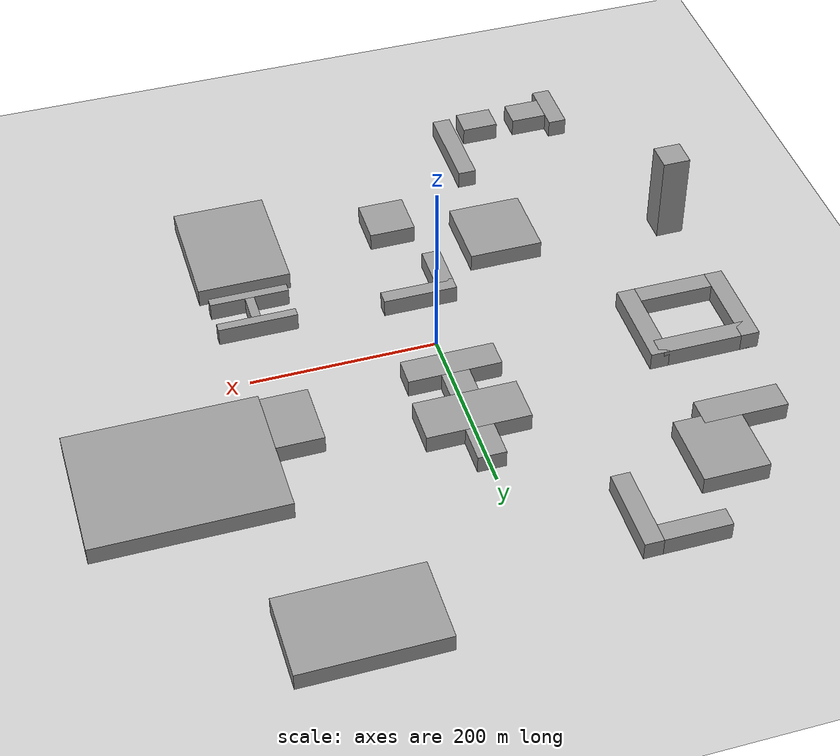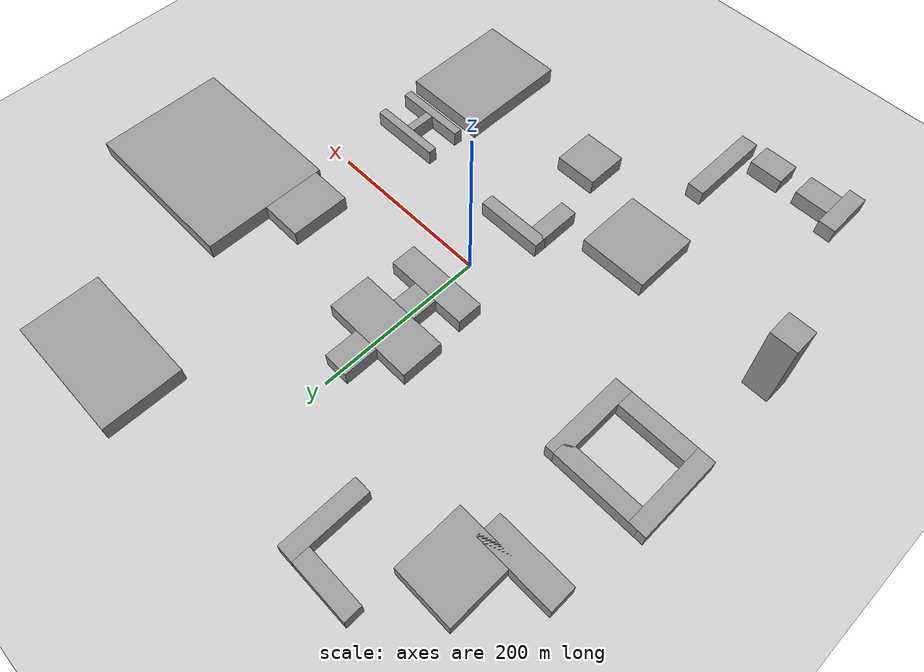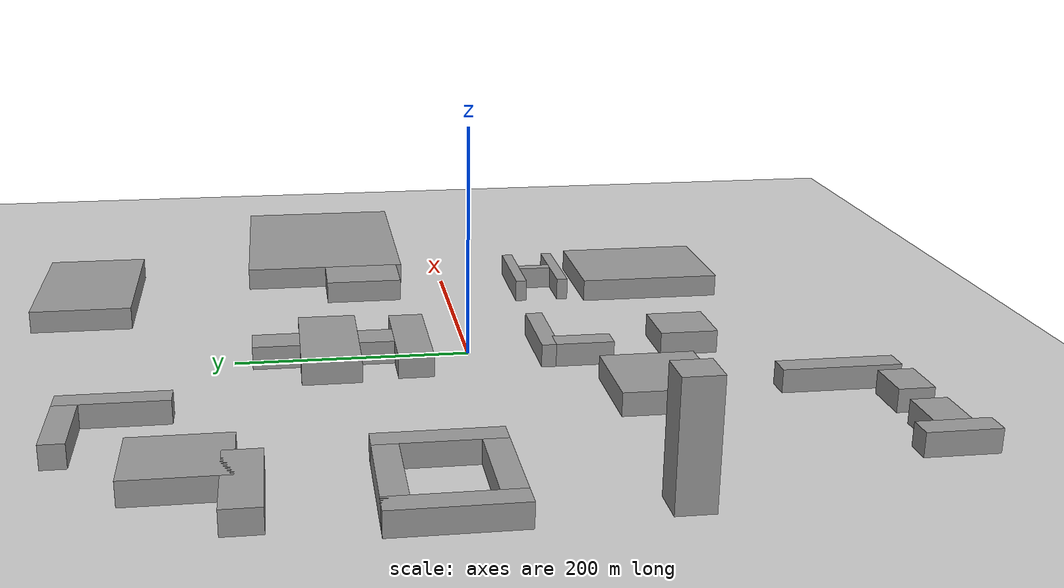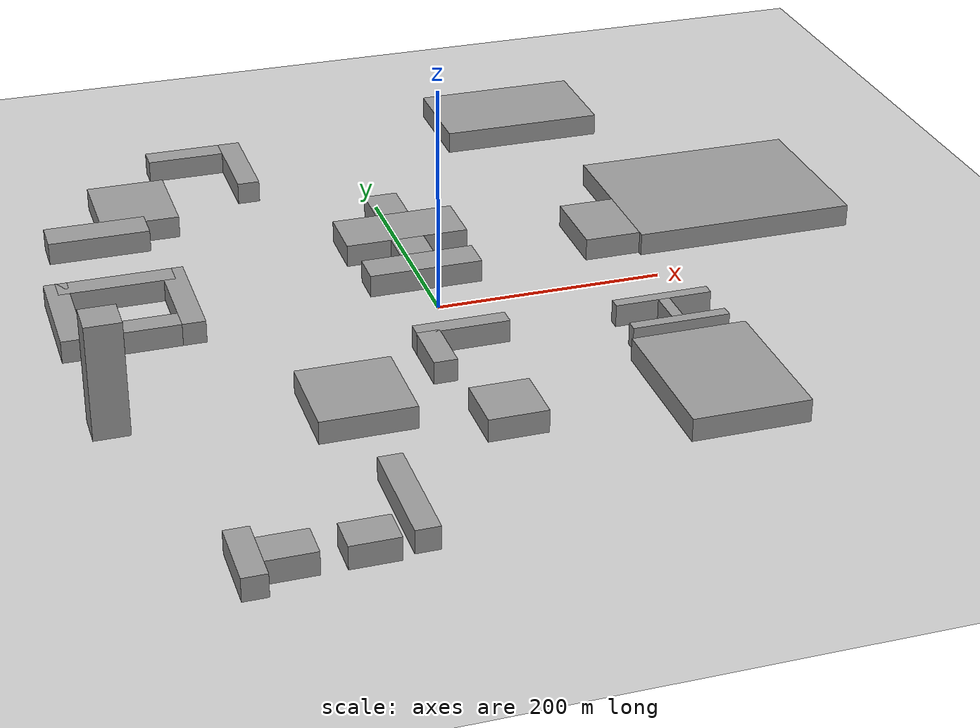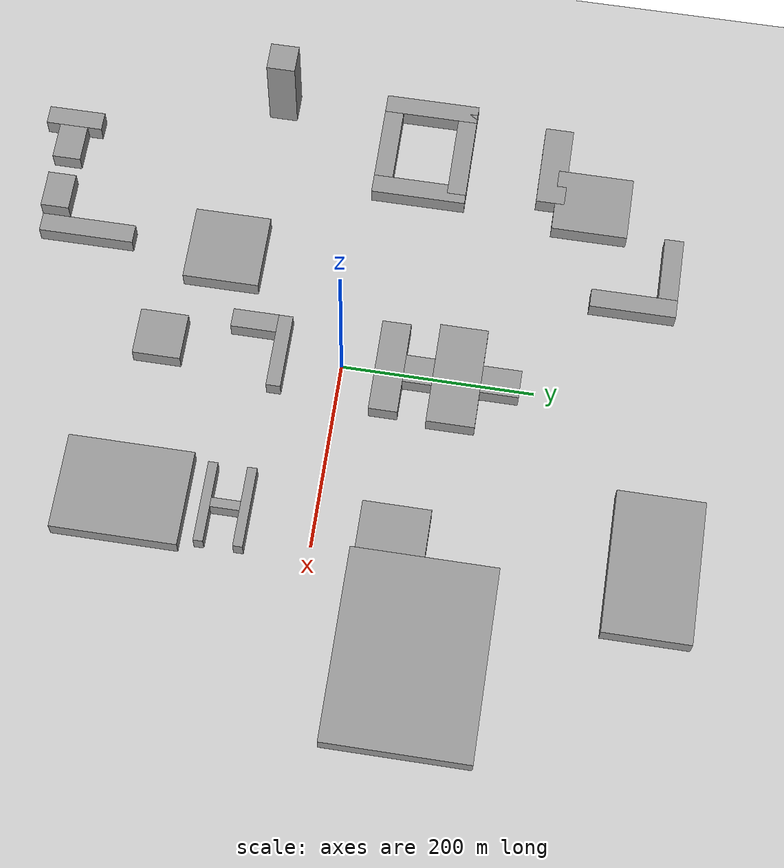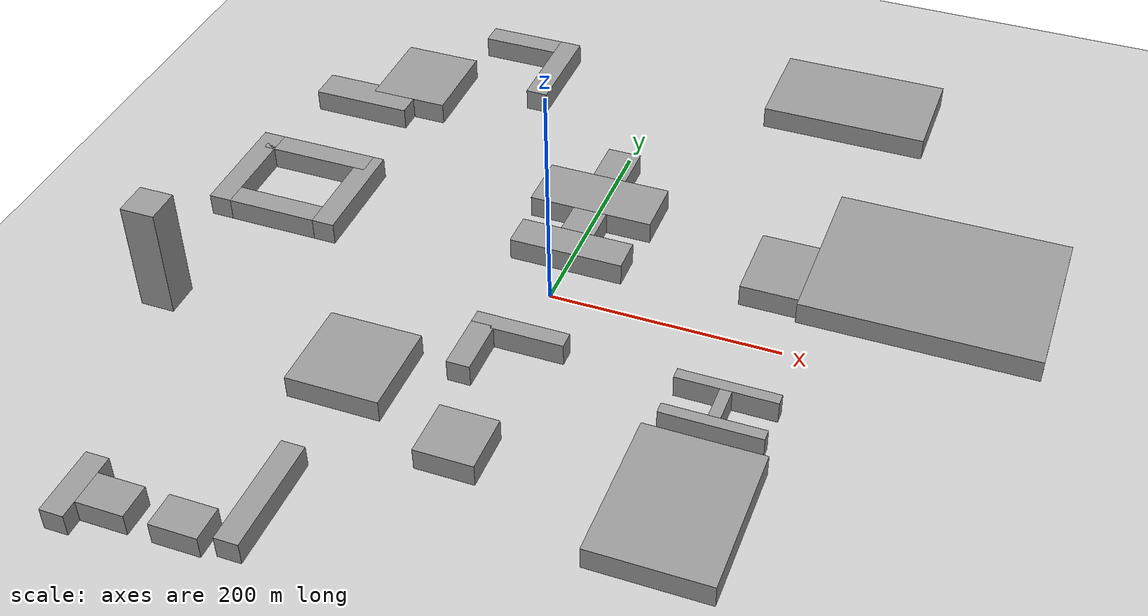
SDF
<sdf version='1.4'>
  <world name='default'>

    <light name='sun' type='directional'>
      <cast_shadows>1</cast_shadows>
      <pose>0 0 500 0 -0 0</pose>
      <diffuse>0.8 0.8 0.8 1</diffuse>
      <specular>0.2 0.2 0.2 1</specular>
      <attenuation>
        <range>1000</range>
        <constant>0.9</constant>
        <linear>0.01</linear>
        <quadratic>0.001</quadratic>
      </attenuation>
      <direction>-0.5 0.1 -0.9</direction>
    </light>

    <model name='ground_plane'>
      <static>1</static>
      <link name='link'>
        <collision name='collision'>
          <geometry>
            <plane>
              <normal>0 0 1</normal>
              <size>10000 10000</size>
            </plane>
          </geometry>
          <surface>
            <friction>
              <ode>
                <mu>100</mu>
                <mu2>50</mu2>
              </ode>
            </friction>
            <bounce/>
            <contact>
              <ode/>
            </contact>
          </surface>
          <max_contacts>10</max_contacts>
        </collision>
        <visual name='visual'>
          <cast_shadows>0</cast_shadows>
          <geometry>
            <plane>
              <normal>0 0 1</normal>
              <size>10000 10000</size>
            </plane>
          </geometry>
          <material>
            <script>
              <uri>file://media/materials/scripts/gazebo.material</uri>
              <name>Gazebo/Grey</name>
            </script>
          </material>
        </visual>
        <velocity_decay>
          <linear>0</linear>
          <angular>0</angular>
        </velocity_decay>
        <self_collide>0</self_collide>
        <kinematic>0</kinematic>
        <gravity>1</gravity>
      </link>
    </model>

    <physics type='ode'>
      <max_step_size>0.001</max_step_size>
      <real_time_factor>1</real_time_factor>
      <real_time_update_rate>1000</real_time_update_rate>
      <gravity>0 0 -9.8</gravity>
    </physics>
    <scene>
      <ambient>0.4 0.4 0.4 1</ambient>
      <background>0.7 0.7 0.7 1</background>
      <shadows>1</shadows>
    </scene>
    <spherical_coordinates>
      <surface_model>EARTH_WGS84</surface_model>
      <latitude_deg>0</latitude_deg>
      <longitude_deg>0</longitude_deg>
      <elevation>0</elevation>
      <heading_deg>0</heading_deg>
    </spherical_coordinates>

    <model name='library_1'>
      <pose>0 50 10 0 -0 0</pose> <!--position (x y z roll pitch yaw)-->
      <link name='link'>
        <inertial>
          <mass>1000</mass>
          <inertia>
            <ixx>1000</ixx>
            <ixy>0</ixy>
            <ixz>0</ixz>
            <iyy>1000</iyy>
            <iyz>0</iyz>
            <izz>1000</izz>
          </inertia>
        </inertial>
        <collision name='collision'>
          <geometry>
            <box>
              <size>100 30 20</size><!--size of the object that you can see(width x, length y, height z)-->
            </box>
          </geometry>
          <max_contacts>10</max_contacts>
          <surface>
            <bounce/>
            <friction>
              <ode/>
            </friction>
            <contact>
              <ode/>
            </contact>
          </surface>
        </collision>
        <visual name='visual'>
          <geometry>
            <box>
              <size>100 30 20</size><!--size of the object that you can see(width x, length y, height z)-->
            </box>
          </geometry>
          <material>
            <script>
              <uri>file://media/materials/scripts/gazebo.material</uri>
              <name>Gazebo/Grey</name>
            </script>
          </material>
        </visual>
        <velocity_decay>
          <linear>0</linear>
          <angular>0</angular>
        </velocity_decay>
        <self_collide>0</self_collide>
        <kinematic>0</kinematic>
        <gravity>1</gravity>
      </link>
      <static>1</static>  <!-- make sure static has value of 1 so as not to move when pushed-->
    </model>

  <model name='library_2'>
      <pose>0 80 10 0 -0 0</pose> <!--position (x y z roll pitch yaw) of geometric center-->
      <link name='link'>
        <inertial>
          <mass>1000</mass>
          <inertia>
            <ixx>1000</ixx>
            <ixy>0</ixy>
            <ixz>0</ixz>
            <iyy>1000</iyy>
            <iyz>0</iyz>
            <izz>1000</izz>
          </inertia>
        </inertial>
        <collision name='collision'>
          <geometry>
            <box>
              <size>30 30 20</size><!--size of the object that you can see(width x, length y, height z)-->
            </box>
          </geometry>
          <max_contacts>10</max_contacts>
          <surface>
            <bounce/>
            <friction>
              <ode/>
            </friction>
            <contact>
              <ode/>
            </contact>
          </surface>
        </collision>
        <visual name='visual'>
          <geometry>
            <box>
              <size>30 30 20</size><!--size of the object that you can see(width x, length y, height z)-->
            </box>
          </geometry>
          <material>
            <script>
              <uri>file://media/materials/scripts/gazebo.material</uri>
              <name>Gazebo/Grey</name>
            </script>
          </material>
        </visual>
        <velocity_decay>
          <linear>0</linear>
          <angular>0</angular>
        </velocity_decay>
        <self_collide>0</self_collide>
        <kinematic>0</kinematic>
        <gravity>1</gravity>
      </link>
      <static>1</static>  <!-- make sure static has value of 1 so as not to move when pushed-->
    </model>

 <model name='library_3'>
      <pose>0 120 10 0 -0 0</pose> <!--position (x y z roll pitch yaw) of geometric center-->
      <link name='link'>
        <inertial>
          <mass>1000</mass>
          <inertia>
            <ixx>1000</ixx>
            <ixy>0</ixy>
            <ixz>0</ixz>
            <iyy>1000</iyy>
            <iyz>0</iyz>
            <izz>1000</izz>
          </inertia>
        </inertial>
        <collision name='collision'>
          <geometry>
            <box>
              <size>110 50 20</size><!--size of the object that you can see(width x, length y, height z)-->
            </box>
          </geometry>
          <max_contacts>10</max_contacts>
          <surface>
            <bounce/>
            <friction>
              <ode/>
            </friction>
            <contact>
              <ode/>
            </contact>
          </surface>
        </collision>
        <visual name='visual'>
          <geometry>
            <box>
              <size>110 50 20</size><!--size of the object that you can see(width x, length y, height z)-->
            </box>
          </geometry>
          <material>
            <script>
              <uri>file://media/materials/scripts/gazebo.material</uri>
              <name>Gazebo/Grey</name>
            </script>
          </material>
        </visual>
        <velocity_decay>
          <linear>0</linear>
          <angular>0</angular>
        </velocity_decay>
        <self_collide>0</self_collide>
        <kinematic>0</kinematic>
        <gravity>1</gravity>
      </link>
      <static>1</static>  <!-- make sure static has value of 1 so as not to move when pushed-->
    </model>

 <model name='library_4'>
      <pose>0 165 10 0 -0 0</pose> <!--position (x y z roll pitch yaw) of geometric center-->
      <link name='link'>
        <inertial>
          <mass>1000</mass>
          <inertia>
            <ixx>1000</ixx>
            <ixy>0</ixy>
            <ixz>0</ixz>
            <iyy>1000</iyy>
            <iyz>0</iyz>
            <izz>1000</izz>
          </inertia>
        </inertial>
        <collision name='collision'>
          <geometry>
            <box>
              <size>30 40 20</size><!--size of the object that you can see(width x, length y, height z)-->
            </box>
          </geometry>
          <max_contacts>10</max_contacts>
          <surface>
            <bounce/>
            <friction>
              <ode/>
            </friction>
            <contact>
              <ode/>
            </contact>
          </surface>
        </collision>
        <visual name='visual'>
          <geometry>
            <box>
              <size>30 40 20</size><!--size of the object that you can see(width x, length y, height z)-->
            </box>
          </geometry>
          <material>
            <script>
              <uri>file://media/materials/scripts/gazebo.material</uri>
              <name>Gazebo/Grey</name>
            </script>
          </material>
        </visual>
        <velocity_decay>
          <linear>0</linear>
          <angular>0</angular>
        </velocity_decay>
        <self_collide>0</self_collide>
        <kinematic>0</kinematic>
        <gravity>1</gravity>
      </link>
      <static>1</static>  <!-- make sure static has value of 1 so as not to move when pushed-->
    </model>

 <model name='kennedy_2'>
      <pose>0 -65 10 0 -0 0</pose> <!--position (x y z roll pitch yaw) of geometric center-->
      <link name='link'>
        <inertial>
          <mass>1000</mass>
          <inertia>
            <ixx>1000</ixx>
            <ixy>0</ixy>
            <ixz>0</ixz>
            <iyy>1000</iyy>
            <iyz>0</iyz>
            <izz>1000</izz>
          </inertia>
        </inertial>
        <collision name='collision'>
          <geometry>
            <box>
              <size>80 15 20</size><!--size of the object that you can see(width x, length y, height z)-->
            </box>
          </geometry>
          <max_contacts>10</max_contacts>
          <surface>
            <bounce/>
            <friction>
              <ode/>
            </friction>
            <contact>
              <ode/>
            </contact>
          </surface>
        </collision>
        <visual name='visual'>
          <geometry>
            <box>
              <size>80 15 20</size><!--size of the object that you can see(width x, length y, height z)-->
            </box>
          </geometry>
          <material>
            <script>
              <uri>file://media/materials/scripts/gazebo.material</uri>
              <name>Gazebo/Grey</name>
            </script>
          </material>
        </visual>
        <velocity_decay>
          <linear>0</linear>
          <angular>0</angular>
        </velocity_decay>
        <self_collide>0</self_collide>
        <kinematic>0</kinematic>
        <gravity>1</gravity>
      </link>
      <static>1</static>  <!-- make sure static has value of 1 so as not to move when pushed-->
    </model>

 <model name='kennedy_1'>
      <pose>-30 -95 10 0 -0 0</pose> <!--position (x y z roll pitch yaw) of geometric center-->
      <link name='link'>
        <inertial>
          <mass>1000</mass>
          <inertia>
            <ixx>1000</ixx>
            <ixy>0</ixy>
            <ixz>0</ixz>
            <iyy>1000</iyy>
            <iyz>0</iyz>
            <izz>1000</izz>
          </inertia>
        </inertial>
        <collision name='collision'>
          <geometry>
            <box>
              <size>20 50 20</size><!--size of the object that you can see(width x, length y, height z)-->
            </box>
          </geometry>
          <max_contacts>10</max_contacts>
          <surface>
            <bounce/>
            <friction>
              <ode/>
            </friction>
            <contact>
              <ode/>
            </contact>
          </surface>
        </collision>
        <visual name='visual'>
          <geometry>
            <box>
              <size>20 50 20</size><!--size of the object that you can see(width x, length y, height z)-->
            </box>
          </geometry>
          <material>
            <script>
              <uri>file://media/materials/scripts/gazebo.material</uri>
              <name>Gazebo/Grey</name>
            </script>
          </material>
        </visual>
        <velocity_decay>
          <linear>0</linear>
          <angular>0</angular>
        </velocity_decay>
        <self_collide>0</self_collide>
        <kinematic>0</kinematic>
        <gravity>1</gravity>
      </link>
      <static>1</static>  <!-- make sure static has value of 1 so as not to move when pushed-->
    </model>

 <model name='marb'>
      <pose>-0 -190 10 0 -0 0</pose> <!--position (x y z roll pitch yaw) of geometric center-->
      <link name='link'>
        <inertial>
          <mass>1000</mass>
          <inertia>
            <ixx>1000</ixx>
            <ixy>0</ixy>
            <ixz>0</ixz>
            <iyy>1000</iyy>
            <iyz>0</iyz>
            <izz>1000</izz>
          </inertia>
        </inertial>
        <collision name='collision'>
          <geometry>
            <box>
              <size>50 50 20</size><!--size of the object that you can see(width x, length y, height z)-->
            </box>
          </geometry>
          <max_contacts>10</max_contacts>
          <surface>
            <bounce/>
            <friction>
              <ode/>
            </friction>
            <contact>
              <ode/>
            </contact>
          </surface>
        </collision>
        <visual name='visual'>
          <geometry>
            <box>
              <size>50 50 20</size><!--size of the object that you can see(width x, length y, height z)-->
            </box>
          </geometry>
          <material>
            <script>
              <uri>file://media/materials/scripts/gazebo.material</uri>
              <name>Gazebo/Grey</name>
            </script>
          </material>
        </visual>
        <velocity_decay>
          <linear>0</linear>
          <angular>0</angular>
        </velocity_decay>
        <self_collide>0</self_collide>
        <kinematic>0</kinematic>
        <gravity>1</gravity>
      </link>
      <static>1</static>  <!-- make sure static has value of 1 so as not to move when pushed-->
    </model>

 <model name='clyde'>
      <pose>175 -195 10 0 -0 0</pose> <!--position (x y z roll pitch yaw) of geometric center-->
      <link name='link'>
        <inertial>
          <mass>1000</mass>
          <inertia>
            <ixx>1000</ixx>
            <ixy>0</ixy>
            <ixz>0</ixz>
            <iyy>1000</iyy>
            <iyz>0</iyz>
            <izz>1000</izz>
          </inertia>
        </inertial>
        <collision name='collision'>
          <geometry>
            <box>
              <size>100 130 20</size><!--size of the object that you can see(width x, length y, height z)-->
            </box>
          </geometry>
          <max_contacts>10</max_contacts>
          <surface>
            <bounce/>
            <friction>
              <ode/>
            </friction>
            <contact>
              <ode/>
            </contact>
          </surface>
        </collision>
        <visual name='visual'>
          <geometry>
            <box>
              <size>100 130 20</size><!--size of the object that you can see(width x, length y, height z)-->
            </box>
          </geometry>
          <material>
            <script>
              <uri>file://media/materials/scripts/gazebo.material</uri>
              <name>Gazebo/Grey</name>
            </script>
          </material>
        </visual>
        <velocity_decay>
          <linear>0</linear>
          <angular>0</angular>
        </velocity_decay>
        <self_collide>0</self_collide>
        <kinematic>0</kinematic>
        <gravity>1</gravity>
      </link>
      <static>1</static>  <!-- make sure static has value of 1 so as not to move when pushed-->
    </model>

<model name='fletcher_1'>
      <pose>175 -110 10 0 -0 0</pose> <!--position (x y z roll pitch yaw) of geometric center-->
      <link name='link'>
        <inertial>
          <mass>1000</mass>
          <inertia>
            <ixx>1000</ixx>
            <ixy>0</ixy>
            <ixz>0</ixz>
            <iyy>1000</iyy>
            <iyz>0</iyz>
            <izz>1000</izz>
          </inertia>
        </inertial>
        <collision name='collision'>
          <geometry>
            <box>
              <size>85 10 20</size><!--size of the object that you can see(width x, length y, height z)-->
            </box>
          </geometry>
          <max_contacts>10</max_contacts>
          <surface>
            <bounce/>
            <friction>
              <ode/>
            </friction>
            <contact>
              <ode/>
            </contact>
          </surface>
        </collision>
        <visual name='visual'>
          <geometry>
            <box>
              <size>85 10 20</size><!--size of the object that you can see(width x, length y, height z)-->
            </box>
          </geometry>
          <material>
            <script>
              <uri>file://media/materials/scripts/gazebo.material</uri>
              <name>Gazebo/Grey</name>
            </script>
          </material>
        </visual>
        <velocity_decay>
          <linear>0</linear>
          <angular>0</angular>
        </velocity_decay>
        <self_collide>0</self_collide>
        <kinematic>0</kinematic>
        <gravity>1</gravity>
      </link>
      <static>1</static>  <!-- make sure static has value of 1 so as not to move when pushed-->
    </model>

<model name='fletcher_2'>
      <pose>175 -90 10 0 -0 0</pose> <!--position (x y z roll pitch yaw) of geometric center-->
      <link name='link'>
        <inertial>
          <mass>1000</mass>
          <inertia>
            <ixx>1000</ixx>
            <ixy>0</ixy>
            <ixz>0</ixz>
            <iyy>1000</iyy>
            <iyz>0</iyz>
            <izz>1000</izz>
          </inertia>
        </inertial>
        <collision name='collision'>
          <geometry>
            <box>
              <size>10 30 20</size><!--size of the object that you can see(width x, length y, height z)-->
            </box>
          </geometry>
          <max_contacts>10</max_contacts>
          <surface>
            <bounce/>
            <friction>
              <ode/>
            </friction>
            <contact>
              <ode/>
            </contact>
          </surface>
        </collision>
        <visual name='visual'>
          <geometry>
            <box>
              <size>10 30 20</size><!--size of the object that you can see(width x, length y, height z)-->
            </box>
          </geometry>
          <material>
            <script>
              <uri>file://media/materials/scripts/gazebo.material</uri>
              <name>Gazebo/Grey</name>
            </script>
          </material>
        </visual>
        <velocity_decay>
          <linear>0</linear>
          <angular>0</angular>
        </velocity_decay>
        <self_collide>0</self_collide>
        <kinematic>0</kinematic>
        <gravity>1</gravity>
      </link>
      <static>1</static>  <!-- make sure static has value of 1 so as not to move when pushed-->
    </model>

<model name='fletcher_3'>
      <pose>175 -70 10 0 -0 0</pose> <!--position (x y z roll pitch yaw) of geometric center-->
      <link name='link'>
        <inertial>
          <mass>1000</mass>
          <inertia>
            <ixx>1000</ixx>
            <ixy>0</ixy>
            <ixz>0</ixz>
            <iyy>1000</iyy>
            <iyz>0</iyz>
            <izz>1000</izz>
          </inertia>
        </inertial>
        <collision name='collision'>
          <geometry>
            <box>
              <size>85 10 20</size><!--size of the object that you can see(width x, length y, height z)-->
            </box>
          </geometry>
          <max_contacts>10</max_contacts>
          <surface>
            <bounce/>
            <friction>
              <ode/>
            </friction>
            <contact>
              <ode/>
            </contact>
          </surface>
        </collision>
        <visual name='visual'>
          <geometry>
            <box>
              <size>85 10 20</size><!--size of the object that you can see(width x, length y, height z)-->
            </box>
          </geometry>
          <material>
            <script>
              <uri>file://media/materials/scripts/gazebo.material</uri>
              <name>Gazebo/Grey</name>
            </script>
          </material>
        </visual>
        <velocity_decay>
          <linear>0</linear>
          <angular>0</angular>
        </velocity_decay>
        <self_collide>0</self_collide>
        <kinematic>0</kinematic>
        <gravity>1</gravity>
      </link>
      <static>1</static>  <!-- make sure static has value of 1 so as not to move when pushed-->
    </model>

<model name='wilk_1'>
      <pose>175 80 10 0 -0 0</pose> <!--position (x y z roll pitch yaw) of geometric center-->
      <link name='link'>
        <inertial>
          <mass>1000</mass>
          <inertia>
            <ixx>1000</ixx>
            <ixy>0</ixy>
            <ixz>0</ixz>
            <iyy>1000</iyy>
            <iyz>0</iyz>
            <izz>1000</izz>
          </inertia>
        </inertial>
        <collision name='collision'>
          <geometry>
            <box>
              <size>50 70 20</size><!--size of the object that you can see(width x, length y, height z)-->
            </box>
          </geometry>
          <max_contacts>10</max_contacts>
          <surface>
            <bounce/>
            <friction>
              <ode/>
            </friction>
            <contact>
              <ode/>
            </contact>
          </surface>
        </collision>
        <visual name='visual'>
          <geometry>
            <box>
              <size>50 70 20</size><!--size of the object that you can see(width x, length y, height z)-->
            </box>
          </geometry>
          <material>
            <script>
              <uri>file://media/materials/scripts/gazebo.material</uri>
              <name>Gazebo/Grey</name>
            </script>
          </material>
        </visual>
        <velocity_decay>
          <linear>0</linear>
          <angular>0</angular>
        </velocity_decay>
        <self_collide>0</self_collide>
        <kinematic>0</kinematic>
        <gravity>1</gravity>
      </link>
      <static>1</static>  <!-- make sure static has value of 1 so as not to move when pushed-->
    </model>

<model name='wilk_2'>
      <pose>300 115 10 0 -0 0</pose> <!--position (x y z roll pitch yaw) of geometric center-->
      <link name='link'>
        <inertial>
          <mass>1000</mass>
          <inertia>
            <ixx>1000</ixx>
            <ixy>0</ixy>
            <ixz>0</ixz>
            <iyy>1000</iyy>
            <iyz>0</iyz>
            <izz>1000</izz>
          </inertia>
        </inertial>
        <collision name='collision'>
          <geometry>
            <box>
              <size>200 150 20</size><!--size of the object that you can see(width x, length y, height z)-->
            </box>
          </geometry>
          <max_contacts>10</max_contacts>
          <surface>
            <bounce/>
            <friction>
              <ode/>
            </friction>
            <contact>
              <ode/>
            </contact>
          </surface>
        </collision>
        <visual name='visual'>
          <geometry>
            <box>
              <size>200 150 20</size><!--size of the object that you can see(width x, length y, height z)-->
            </box>
          </geometry>
          <material>
            <script>
              <uri>file://media/materials/scripts/gazebo.material</uri>
              <name>Gazebo/Grey</name>
            </script>
          </material>
        </visual>
        <velocity_decay>
          <linear>0</linear>
          <angular>0</angular>
        </velocity_decay>
        <self_collide>0</self_collide>
        <kinematic>0</kinematic>
        <gravity>1</gravity>
      </link>
      <static>1</static>  <!-- make sure static has value of 1 so as not to move when pushed-->
    </model>

<model name='hfac'>
      <pose>175 340 10 0 -0 0</pose> <!--position (x y z roll pitch yaw) of geometric center-->
      <link name='link'>
        <inertial>
          <mass>1000</mass>
          <inertia>
            <ixx>1000</ixx>
            <ixy>0</ixy>
            <ixz>0</ixz>
            <iyy>1000</iyy>
            <iyz>0</iyz>
            <izz>1000</izz>
          </inertia>
        </inertial>
        <collision name='collision'>
          <geometry>
            <box>
              <size>150 90 20</size><!--size of the object that you can see(width x, length y, height z)-->
            </box>
          </geometry>
          <max_contacts>10</max_contacts>
          <surface>
            <bounce/>
            <friction>
              <ode/>
            </friction>
            <contact>
              <ode/>
            </contact>
          </surface>
        </collision>
        <visual name='visual'>
          <geometry>
            <box>
              <size>150 90 20</size><!--size of the object that you can see(width x, length y, height z)-->
            </box>
          </geometry>
          <material>
            <script>
              <uri>file://media/materials/scripts/gazebo.material</uri>
              <name>Gazebo/Grey</name>
            </script>
          </material>
        </visual>
        <velocity_decay>
          <linear>0</linear>
          <angular>0</angular>
        </velocity_decay>
        <self_collide>0</self_collide>
        <kinematic>0</kinematic>
        <gravity>1</gravity>
      </link>
      <static>1</static>  <!-- make sure static has value of 1 so as not to move when pushed-->
    </model>

<model name='jkb_1'>
      <pose>-110 290 10 0 -0 0</pose> <!--position (x y z roll pitch yaw) of geometric center-->
      <link name='link'>
        <inertial>
          <mass>1000</mass>
          <inertia>
            <ixx>1000</ixx>
            <ixy>0</ixy>
            <ixz>0</ixz>
            <iyy>1000</iyy>
            <iyz>0</iyz>
            <izz>1000</izz>
          </inertia>
        </inertial>
        <collision name='collision'>
          <geometry>
            <box>
              <size>20 90 20</size><!--size of the object that you can see(width x, length y, height z)-->
            </box>
          </geometry>
          <max_contacts>10</max_contacts>
          <surface>
            <bounce/>
            <friction>
              <ode/>
            </friction>
            <contact>
              <ode/>
            </contact>
          </surface>
        </collision>
        <visual name='visual'>
          <geometry>
            <box>
              <size>20 90 20</size><!--size of the object that you can see(width x, length y, height z)-->
            </box>
          </geometry>
          <material>
            <script>
              <uri>file://media/materials/scripts/gazebo.material</uri>
              <name>Gazebo/Grey</name>
            </script>
          </material>
        </visual>
        <velocity_decay>
          <linear>0</linear>
          <angular>0</angular>
        </velocity_decay>
        <self_collide>0</self_collide>
        <kinematic>0</kinematic>
        <gravity>1</gravity>
      </link>
      <static>1</static>  <!-- make sure static has value of 1 so as not to move when pushed-->
    </model>

<model name='jkb_2'>
      <pose>-155 325 10 0 -0 0</pose> <!--position (x y z roll pitch yaw) of geometric center-->
      <link name='link'>
        <inertial>
          <mass>1000</mass>
          <inertia>
            <ixx>1000</ixx>
            <ixy>0</ixy>
            <ixz>0</ixz>
            <iyy>1000</iyy>
            <iyz>0</iyz>
            <izz>1000</izz>
          </inertia>
        </inertial>
        <collision name='collision'>
          <geometry>
            <box>
              <size>70 20 20</size><!--size of the object that you can see(width x, length y, height z)-->
            </box>
          </geometry>
          <max_contacts>10</max_contacts>
          <surface>
            <bounce/>
            <friction>
              <ode/>
            </friction>
            <contact>
              <ode/>
            </contact>
          </surface>
        </collision>
        <visual name='visual'>
          <geometry>
            <box>
              <size>70 20 20</size><!--size of the object that you can see(width x, length y, height z)-->
            </box>
          </geometry>
          <material>
            <script>
              <uri>file://media/materials/scripts/gazebo.material</uri>
              <name>Gazebo/Grey</name>
            </script>
          </material>
        </visual>
        <velocity_decay>
          <linear>0</linear>
          <angular>0</angular>
        </velocity_decay>
        <self_collide>0</self_collide>
        <kinematic>0</kinematic>
        <gravity>1</gravity>
      </link>
      <static>1</static>  <!-- make sure static has value of 1 so as not to move when pushed-->
    </model>

<model name='talmage_1'>
      <pose>-220 235 10 0 -0 0</pose> <!--position (x y z roll pitch yaw) of geometric center-->
      <link name='link'>
        <inertial>
          <mass>1000</mass>
          <inertia>
            <ixx>1000</ixx>
            <ixy>0</ixy>
            <ixz>0</ixz>
            <iyy>1000</iyy>
            <iyz>0</iyz>
            <izz>1000</izz>
          </inertia>
        </inertial>
        <collision name='collision'>
          <geometry>
            <box>
              <size>70 80 20</size><!--size of the object that you cansee(width x, length y, height z)-->
            </box>
          </geometry>
          <max_contacts>10</max_contacts>
          <surface>
            <bounce/>
            <friction>
              <ode/>
            </friction>
            <contact>
              <ode/>
            </contact>
          </surface>
        </collision>
        <visual name='visual'>
          <geometry>
            <box>
              <size>70 80 20</size><!--size of the object thatyou can see(width x, length y, height z)-->
            </box>
          </geometry>
          <material>
            <script>
              <uri>file://media/materials/scripts/gazebo.material</uri>
              <name>Gazebo/Grey</name>
            </script>
          </material>
        </visual>
        <velocity_decay>
          <linear>0</linear>
          <angular>0</angular>
        </velocity_decay>
        <self_collide>0</self_collide>
        <kinematic>0</kinematic>
        <gravity>1</gravity>
      </link>
      <static>1</static>  <!-- make sure static has value of 1 so as not to move when pushed-->
    </model>

<model name='talmage_2'>
      <pose>-260 190 10 0 -0 0</pose> <!--position (x y z roll pitch yaw) of geometric center-->
      <link name='link'>
        <inertial>
          <mass>1000</mass>
          <inertia>
            <ixx>1000</ixx>
            <ixy>0</ixy>
            <ixz>0</ixz>
            <iyy>1000</iyy>
            <iyz>0</iyz>
            <izz>1000</izz>
          </inertia>
        </inertial>
        <collision name='collision'>
          <geometry>
            <box>
              <size>90 30 20</size><!--size of the object that you cansee(width x, length y, height z)-->
            </box>
          </geometry>
          <max_contacts>10</max_contacts>
          <surface>
            <bounce/>
            <friction>
              <ode/>
            </friction>
            <contact>
              <ode/>
            </contact>
          </surface>
        </collision>
        <visual name='visual'>
          <geometry>
            <box>
              <size>90 30 20</size><!--size of the object thatyou can see(width x, length y, height z)-->
            </box>
          </geometry>
          <material>
            <script>
              <uri>file://media/materials/scripts/gazebo.material</uri>
              <name>Gazebo/Grey</name>
            </script>
          </material>
        </visual>
        <velocity_decay>
          <linear>0</linear>
          <angular>0</angular>
        </velocity_decay>
        <self_collide>0</self_collide>
        <kinematic>0</kinematic>
        <gravity>1</gravity>
      </link>
      <static>1</static>  <!-- make sure static has value of 1 so as not to move when pushed-->
    </model>

<model name='eyring'>
      <pose>-110 -140 10 0 -0 0</pose> <!--position (x y z roll pitch yaw) of geometric center-->
      <link name='link'>
        <inertial>
          <mass>1000</mass>
          <inertia>
            <ixx>1000</ixx>
            <ixy>0</ixy>
            <ixz>0</ixz>
            <iyy>1000</iyy>
            <iyz>0</iyz>
            <izz>1000</izz>
          </inertia>
        </inertial>
        <collision name='collision'>
          <geometry>
            <box>
              <size>80 80 20</size><!--size of the object that you cansee(width x, length y, height z)-->
            </box>
          </geometry>
          <max_contacts>10</max_contacts>
          <surface>
            <bounce/>
            <friction>
              <ode/>
            </friction>
            <contact>
              <ode/>
            </contact>
          </surface>
        </collision>
        <visual name='visual'>
          <geometry>
            <box>
              <size>80 80 20</size><!--size of the object thatyou can see(width x, length y, height z)-->
            </box>
          </geometry>
          <material>
            <script>
              <uri>file://media/materials/scripts/gazebo.material</uri>
              <name>Gazebo/Grey</name>
            </script>
          </material>
        </visual>
        <velocity_decay>
          <linear>0</linear>
          <angular>0</angular>
        </velocity_decay>
        <self_collide>0</self_collide>
        <kinematic>0</kinematic>
        <gravity>1</gravity>
      </link>
      <static>1</static>  <!-- make sure static has value of 1 so as not to move when pushed-->
    </model>

<model name='jfsb_1'>
      <pose>-210 50 10 0 -0 0</pose> <!--position (x y z roll pitch yaw) of geometric center-->
      <link name='link'>
        <inertial>
          <mass>1000</mass>
          <inertia>
            <ixx>1000</ixx>
            <ixy>0</ixy>
            <ixz>0</ixz>
            <iyy>1000</iyy>
            <iyz>0</iyz>
            <izz>1000</izz>
          </inertia>
        </inertial>
        <collision name='collision'>
          <geometry>
            <box>
              <size>20 100 20</size><!--size of the object that you cansee(width x, length y, height z)-->
            </box>
          </geometry>
          <max_contacts>10</max_contacts>
          <surface>
            <bounce/>
            <friction>
              <ode/>
            </friction>
            <contact>
              <ode/>
            </contact>
          </surface>
        </collision>
        <visual name='visual'>
          <geometry>
            <box>
              <size>20 100 20</size><!--size of the object thatyou can see(width x, length y, height z)-->
            </box>
          </geometry>
          <material>
            <script>
              <uri>file://media/materials/scripts/gazebo.material</uri>
              <name>Gazebo/Grey</name>
            </script>
          </material>
        </visual>
        <velocity_decay>
          <linear>0</linear>
          <angular>0</angular>
        </velocity_decay>
        <self_collide>0</self_collide>
        <kinematic>0</kinematic>
        <gravity>1</gravity>
      </link>
      <static>1</static>  <!-- make sure static has value of 1 so as not to move when pushed-->
    </model>

<model name='jfsb_2'>
      <pose>-310 50 10 0 -0 0</pose> <!--position (x y z roll pitch yaw) of geometric center-->
      <link name='link'>
        <inertial>
          <mass>1000</mass>
          <inertia>
            <ixx>1000</ixx>
            <ixy>0</ixy>
            <ixz>0</ixz>
            <iyy>1000</iyy>
            <iyz>0</iyz>
            <izz>1000</izz>
          </inertia>
        </inertial>
        <collision name='collision'>
          <geometry>
            <box>
              <size>20 100 20</size><!--size of the object that you cansee(width x, length y, height z)-->
            </box>
          </geometry>
          <max_contacts>10</max_contacts>
          <surface>
            <bounce/>
            <friction>
              <ode/>
            </friction>
            <contact>
              <ode/>
            </contact>
          </surface>
        </collision>
        <visual name='visual'>
          <geometry>
            <box>
              <size>20 100 20</size><!--size of the object thatyou can see(width x, length y, height z)-->
            </box>
          </geometry>
          <material>
            <script>
              <uri>file://media/materials/scripts/gazebo.material</uri>
              <name>Gazebo/Grey</name>
            </script>
          </material>
        </visual>
        <velocity_decay>
          <linear>0</linear>
          <angular>0</angular>
        </velocity_decay>
        <self_collide>0</self_collide>
        <kinematic>0</kinematic>
        <gravity>1</gravity>
      </link>
      <static>1</static>  <!-- make sure static has value of 1 so as not to move when pushed-->
    </model>

<model name='jfsb_3'>
      <pose>-260 90 10 0 -0 0</pose> <!--position (x y z roll pitch yaw) of geometric center-->
      <link name='link'>
        <inertial>
          <mass>1000</mass>
          <inertia>
            <ixx>1000</ixx>
            <ixy>0</ixy>
            <ixz>0</ixz>
            <iyy>1000</iyy>
            <iyz>0</iyz>
            <izz>1000</izz>
          </inertia>
        </inertial>
        <collision name='collision'>
          <geometry>
            <box>
              <size>80 20 20</size><!--size of the object that you cansee(width x, length y, height z)-->
            </box>
          </geometry>
          <max_contacts>10</max_contacts>
          <surface>
            <bounce/>
            <friction>
              <ode/>
            </friction>
            <contact>
              <ode/>
            </contact>
          </surface>
        </collision>
        <visual name='visual'>
          <geometry>
            <box>
              <size>100 20 20</size><!--size of the object thatyou can see(width x, length y, height z)-->
            </box>
          </geometry>
          <material>
            <script>
              <uri>file://media/materials/scripts/gazebo.material</uri>
              <name>Gazebo/Grey</name>
            </script>
          </material>
        </visual>
        <velocity_decay>
          <linear>0</linear>
          <angular>0</angular>
        </velocity_decay>
        <self_collide>0</self_collide>
        <kinematic>0</kinematic>
        <gravity>1</gravity>
      </link>
      <static>1</static>  <!-- make sure static has value of 1 so as not to move when pushed-->
    </model>

<model name='jfsb_4'>
      <pose>-260 10 10 0 -0 0</pose> <!--position (x y z roll pitch yaw) of geometric center-->
      <link name='link'>
        <inertial>
          <mass>1000</mass>
          <inertia>
            <ixx>1000</ixx>
            <ixy>0</ixy>
            <ixz>0</ixz>
            <iyy>1000</iyy>
            <iyz>0</iyz>
            <izz>1000</izz>
          </inertia>
        </inertial>
        <collision name='collision'>
          <geometry>
            <box>
              <size>100 20 20</size><!--size of the object that you cansee(width x, length y, height z)-->
            </box>
          </geometry>
          <max_contacts>10</max_contacts>
          <surface>
            <bounce/>
            <friction>
              <ode/>
            </friction>
            <contact>
              <ode/>
            </contact>
          </surface>
        </collision>
        <visual name='visual'>
          <geometry>
            <box>
              <size>80 20 20</size><!--size of the object thatyou can see(width x, length y, height z)-->
            </box>
          </geometry>
          <material>
            <script>
              <uri>file://media/materials/scripts/gazebo.material</uri>
              <name>Gazebo/Grey</name>
            </script>
          </material>
        </visual>
        <velocity_decay>
          <linear>0</linear>
          <angular>0</angular>
        </velocity_decay>
        <self_collide>0</self_collide>
        <kinematic>0</kinematic>
        <gravity>1</gravity>
      </link>
      <static>1</static>  <!-- make sure static has value of 1 so as not to move when pushed-->
    </model>

<model name='swkt'>
      <pose>-300 -110 50 0 -0 0</pose> <!--position (x y z roll pitch yaw) of geometric center-->
      <link name='link'>
        <inertial>
          <mass>1000</mass>
          <inertia>
            <ixx>1000</ixx>
            <ixy>0</ixy>
            <ixz>0</ixz>
            <iyy>1000</iyy>
            <iyz>0</iyz>
            <izz>1000</izz>
          </inertia>
        </inertial>
        <collision name='collision'>
          <geometry>
            <box>
              <size>30 30 100</size><!--size of the object that you cansee(width x, length y, height z)-->
            </box>
          </geometry>
          <max_contacts>10</max_contacts>
          <surface>
            <bounce/>
            <friction>
              <ode/>
            </friction>
            <contact>
              <ode/>
            </contact>
          </surface>
        </collision>
        <visual name='visual'>
          <geometry>
            <box>
              <size>30 30 100</size><!--size of the object thatyou can see(width x, length y, height z)-->
            </box>
          </geometry>
          <material>
            <script>
              <uri>file://media/materials/scripts/gazebo.material</uri>
              <name>Gazebo/Grey</name>
            </script>
          </material>
        </visual>
        <velocity_decay>
          <linear>0</linear>
          <angular>0</angular>
        </velocity_decay>
        <self_collide>0</self_collide>
        <kinematic>0</kinematic>
        <gravity>1</gravity>
      </link>
      <static>1</static>  <!-- make sure static has value of 1 so as not to move when pushed-->
    </model>

<model name='benson_1'>
      <pose>-110 -290 10 0 -0 0</pose> <!--position (x y z roll pitch yaw) of geometric center-->
      <link name='link'>
        <inertial>
          <mass>1000</mass>
          <inertia>
            <ixx>1000</ixx>
            <ixy>0</ixy>
            <ixz>0</ixz>
            <iyy>1000</iyy>
            <iyz>0</iyz>
            <izz>1000</izz>
          </inertia>
        </inertial>
        <collision name='collision'>
          <geometry>
            <box>
              <size>20 100 20</size><!--size of the object that you cansee(width x, length y, height z)-->
            </box>
          </geometry>
          <max_contacts>10</max_contacts>
          <surface>
            <bounce/>
            <friction>
              <ode/>
            </friction>
            <contact>
              <ode/>
            </contact>
          </surface>
        </collision>
        <visual name='visual'>
          <geometry>
            <box>
              <size>20 100 20</size><!--size of the object thatyou can see(width x, length y, height z)-->
            </box>
          </geometry>
          <material>
            <script>
              <uri>file://media/materials/scripts/gazebo.material</uri>
              <name>Gazebo/Grey</name>
            </script>
          </material>
        </visual>
        <velocity_decay>
          <linear>0</linear>
          <angular>0</angular>
        </velocity_decay>
        <self_collide>0</self_collide>
        <kinematic>0</kinematic>
        <gravity>1</gravity>
      </link>
      <static>1</static>  <!-- make sure static has value of 1 so as not to move when pushed-->
    </model>

<model name='benson_2'>
      <pose>-150 -330 10 0 -0 0</pose> <!--position (x y z roll pitch yaw) of geometric center-->
      <link name='link'>
        <inertial>
          <mass>1000</mass>
          <inertia>
            <ixx>1000</ixx>
            <ixy>0</ixy>
            <ixz>0</ixz>
            <iyy>1000</iyy>
            <iyz>0</iyz>
            <izz>1000</izz>
          </inertia>
        </inertial>
        <collision name='collision'>
          <geometry>
            <box>
              <size>40 30 20</size><!--size of the object that you cansee(width x, length y, height z)-->
            </box>
          </geometry>
          <max_contacts>10</max_contacts>
          <surface>
            <bounce/>
            <friction>
              <ode/>
            </friction>
            <contact>
              <ode/>
            </contact>
          </surface>
        </collision>
        <visual name='visual'>
          <geometry>
            <box>
              <size>40 30 20</size><!--size of the object thatyou can see(width x, length y, height z)-->
            </box>
          </geometry>
          <material>
            <script>
              <uri>file://media/materials/scripts/gazebo.material</uri>
              <name>Gazebo/Grey</name>
            </script>
          </material>
        </visual>
        <velocity_decay>
          <linear>0</linear>
          <angular>0</angular>
        </velocity_decay>
        <self_collide>0</self_collide>
        <kinematic>0</kinematic>
        <gravity>1</gravity>
      </link>
      <static>1</static>  <!-- make sure static has value of 1 so as not to move when pushed-->
    </model>

<model name='jsb_1'>
      <pose>-210 -330 10 0 -0 0</pose> <!--position (x y z roll pitch yaw) of geometric center-->
      <link name='link'>
        <inertial>
          <mass>1000</mass>
          <inertia>
            <ixx>1000</ixx>
            <ixy>0</ixy>
            <ixz>0</ixz>
            <iyy>1000</iyy>
            <iyz>0</iyz>
            <izz>1000</izz>
          </inertia>
        </inertial>
        <collision name='collision'>
          <geometry>
            <box>
              <size>40 30 20</size><!--size of the object that you cansee(width x, length y, height z)-->
            </box>
          </geometry>
          <max_contacts>10</max_contacts>
          <surface>
            <bounce/>
            <friction>
              <ode/>
            </friction>
            <contact>
              <ode/>
            </contact>
          </surface>
        </collision>
        <visual name='visual'>
          <geometry>
            <box>
              <size>40 30 20</size><!--size of the object thatyou can see(width x, length y, height z)-->
            </box>
          </geometry>
          <material>
            <script>
              <uri>file://media/materials/scripts/gazebo.material</uri>
              <name>Gazebo/Grey</name>
            </script>
          </material>
        </visual>
        <velocity_decay>
          <linear>0</linear>
          <angular>0</angular>
        </velocity_decay>
        <self_collide>0</self_collide>
        <kinematic>0</kinematic>
        <gravity>1</gravity>
      </link>
      <static>1</static>  <!-- make sure static has value of 1 so as not to move when pushed-->
    </model>

<model name='jsb_2'>
      <pose>-240 -330 10 0 -0 0</pose> <!--position (x y z roll pitch yaw) of geometric center-->
      <link name='link'>
        <inertial>
          <mass>1000</mass>
          <inertia>
            <ixx>1000</ixx>
            <ixy>0</ixy>
            <ixz>0</ixz>
            <iyy>1000</iyy>
            <iyz>0</iyz>
            <izz>1000</izz>
          </inertia>
        </inertial>
        <collision name='collision'>
          <geometry>
            <box>
              <size>20 60 20</size><!--size of the object that you cansee(width x, length y, height z)-->
            </box>
          </geometry>
          <max_contacts>10</max_contacts>
          <surface>
            <bounce/>
            <friction>
              <ode/>
            </friction>
            <contact>
              <ode/>
            </contact>
          </surface>
        </collision>
        <visual name='visual'>
          <geometry>
            <box>
              <size>20 60 20</size><!--size of the object thatyou can see(width x, length y, height z)-->
            </box>
          </geometry>
          <material>
            <script>
              <uri>file://media/materials/scripts/gazebo.material</uri>
              <name>Gazebo/Grey</name>
            </script>
          </material>
        </visual>
        <velocity_decay>
          <linear>0</linear>
          <angular>0</angular>
        </velocity_decay>
        <self_collide>0</self_collide>
        <kinematic>0</kinematic>
        <gravity>1</gravity>
      </link>
      <static>1</static>  <!-- make sure static has value of 1 so as not to move when pushed-->
    </model>

    <gui fullscreen='0'>
      <camera name='user_camera'>
        <pose>3.14796 -7.99288 40.8348 1.15202e-17 1.41964 0.02019</pose>
        <view_controller>orbit</view_controller>
      </camera>
    </gui>
  </world>
</sdf>
